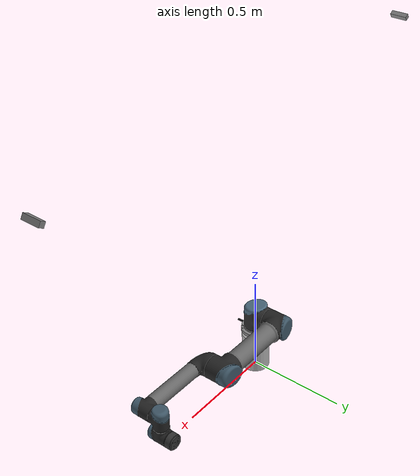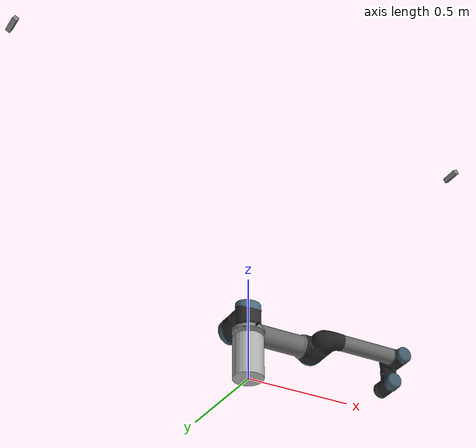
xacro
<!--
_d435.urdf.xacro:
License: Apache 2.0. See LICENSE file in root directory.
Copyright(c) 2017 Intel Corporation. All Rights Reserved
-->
<?xml version="1.0"?>
<robot xmlns:xacro="http://wiki.ros.org/xacro"
       name="ur5" >

  <xacro:arg name="transmission_hw_interface" default="hardware_interface/EffortJointInterface"/>

  <!-- common stuff -->
  <xacro:include filename="$(find ur_description)/urdf/common.gazebo.xacro" />

  <!-- ur5 -->
  <xacro:include filename="$(find ur5_gripper_control)/urdf/ur5.urdf.xacro" />

  <!-- arm -->
  <xacro:ur5_robot prefix="" joint_limited="true"
    shoulder_pan_lower_limit="${-pi}" shoulder_pan_upper_limit="${pi}"
    shoulder_lift_lower_limit="${-pi}" shoulder_lift_upper_limit="${pi}"
    elbow_joint_lower_limit="${-pi}" elbow_joint_upper_limit="${pi}"
    wrist_1_lower_limit="${-pi}" wrist_1_upper_limit="${pi}"
    wrist_2_lower_limit="${-pi}" wrist_2_upper_limit="${pi}"
    wrist_3_lower_limit="${-pi}" wrist_3_upper_limit="${pi}"
    transmission_hw_interface="$(arg transmission_hw_interface)"
  />

  <!-- Realsense Camera -->
  <xacro:include filename="$(find ur5_gripper_control)/urdf/_d435.urdf.xacro" />
  <xacro:include filename="$(find ur5_gripper_control)/urdf/stereo_camera.urdf.xacro" />

  <xacro:sensor_d435 parent="world" name="camera_1_depth" topics_ns="camera_1_depth">
    <origin xyz="1.25 0 1.5" rpy="0 ${pi/6} ${pi}"/>
  </xacro:sensor_d435>

  <xacro:sensor_d435 parent="world" name="camera_2_depth" topics_ns="camera_2_depth">
    <origin xyz="-1.25 0 1.5" rpy="0 ${pi/6} 0.0"/>
  </xacro:sensor_d435>

  <xacro:stereo_camera_v0 name="camera_1_stereo" image_format="R8G8B8"
        parent="world" hfov="90" focal_length="639.997649"
        image_width="1280" image_height="720">
      <origin xyz="1.25 0 1.25" rpy="0 ${pi/6} ${pi}" />
  </xacro:stereo_camera_v0>

  <xacro:stereo_camera_v0 name="camera_2_stereo" image_format="R8G8B8"
      parent="world" hfov="90" focal_length="639.997649"
      image_width="1280" image_height="720">
      <origin xyz="-1.25 0 1.25" rpy="0 ${pi/6} 0.0" />
  </xacro:stereo_camera_v0>

  <link name="world" />

  <link name="pedestal">
    <inertial>
      <origin xyz="0.0 0.0 0.1" rpy="0.0 0.0 0.0"/>
      <mass value="0.0"/>
      <inertia ixx="1.0" ixy="0.0" ixz="0.0" iyy="1.0" iyz="0.0" izz="1.0"/>
    </inertial>
    <visual name="">
      <origin xyz="0.0 0.0 0.1" rpy="0.0 0.0 0.0"/>
      <geometry>
        <cylinder radius="0.07" length="0.2"/>
      </geometry>
      <material name="LightGrey">
        <color rgba="0.7 0.7 0.7 1.0"/>
      </material>
    </visual>
    <collision>
      <origin xyz="0.0 0.0 0.1" rpy="0.0 0.0 0.0"/>
      <geometry>
        <cylinder radius="0.07" length="0.2"/>
      </geometry>
      <material name="LightGrey">
        <color rgba="0.7 0.7 0.7 1.0"/>
      </material>
    </collision>
  </link>

  <gazebo reference="pedestal">
    <selfCollide>true</selfCollide>
    <material>Gazebo/FlatBlack</material>
  </gazebo>

  <joint name="world_joint" type="fixed">
    <parent link="pedestal" />
    <child link = "base_link" />
    <origin xyz="0.0 0.0 0.225" rpy="0.0 0.0 0.0" />
  </joint>

  <joint name="world_pedestal" type="fixed">
    <parent link="world" />
    <child link = "pedestal" />
    <origin xyz="0.0 0.0 0.0" rpy="0.0 0.0 0.0" />
  </joint>

</robot>

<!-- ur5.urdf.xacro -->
<robot xmlns:xacro="http://wiki.ros.org/xacro">

  <xacro:include filename="$(find ur_description)/urdf/ur.transmission.xacro" />
  <xacro:include filename="$(find ur_description)/urdf/ur.gazebo.xacro" />

  <xacro:macro name="cylinder_inertial" params="radius length mass *origin">
    <inertial>
      <mass value="${mass}" />
      <xacro:insert_block name="origin" />
      <inertia ixx="${0.0833333 * mass * (3 * radius * radius + length * length)}" ixy="0.0" ixz="0.0"
        iyy="${0.0833333 * mass * (3 * radius * radius + length * length)}" iyz="0.0"
        izz="${0.5 * mass * radius * radius}" />
    </inertial>
  </xacro:macro>

  <xacro:macro name="ur5_robot" params="prefix joint_limited
    shoulder_pan_lower_limit:=${-2*pi}    shoulder_pan_upper_limit:=${2*pi}
    shoulder_lift_lower_limit:=${-2*pi}    shoulder_lift_upper_limit:=${2*pi}
    elbow_joint_lower_limit:=${-2*pi}    elbow_joint_upper_limit:=${2*pi}
    wrist_1_lower_limit:=${-2*pi}    wrist_1_upper_limit:=${2*pi}
    wrist_2_lower_limit:=${-2*pi}    wrist_2_upper_limit:=${2*pi}
    wrist_3_lower_limit:=${-2*pi}    wrist_3_upper_limit:=${2*pi}
    transmission_hw_interface:=hardware_interface/PositionJointInterface
    safety_limits:=false safety_pos_margin:=0.15
    safety_k_position:=20">

    <!-- Inertia parameters -->
    <xacro:property name="base_mass" value="4.0" />  <!-- This mass might be incorrect -->
    <xacro:property name="shoulder_mass" value="3.7000" />
    <xacro:property name="upper_arm_mass" value="8.3930" />
    <xacro:property name="forearm_mass" value="2.2750" />
    <xacro:property name="wrist_1_mass" value="1.2190" />
    <xacro:property name="wrist_2_mass" value="1.2190" />
    <xacro:property name="wrist_3_mass" value="0.1879" />

    <xacro:property name="shoulder_cog" value="0.0 0.00193 -0.02561" />
    <xacro:property name="upper_arm_cog" value="0.0 -0.024201 0.2125" />
    <xacro:property name="forearm_cog" value="0.0 0.0265 0.11993" />
    <xacro:property name="wrist_1_cog" value="0.0 0.110949 0.01634" />
    <xacro:property name="wrist_2_cog" value="0.0 0.0018 0.11099" />
    <xacro:property name="wrist_3_cog" value="0.0 0.001159 0.0" />

    <!-- Kinematic model -->
    <!-- Properties from urcontrol.conf -->
    <xacro:property name="d1" value="0.089159" />
    <xacro:property name="a2" value="-0.42500" />
    <xacro:property name="a3" value="-0.39225" />
    <xacro:property name="d4" value="0.10915" />
    <xacro:property name="d5" value="0.09465" />
    <xacro:property name="d6" value="0.0823" />

    <!-- Arbitrary offsets for shoulder/elbow joints -->
    <xacro:property name="shoulder_offset" value="0.13585" />  <!-- measured from model -->
    <xacro:property name="elbow_offset" value="-0.1197" /> <!-- measured from model -->

    <!-- link lengths used in model -->
    <xacro:property name="shoulder_height" value="${d1}" />
    <xacro:property name="upper_arm_length" value="${-a2}" />
    <xacro:property name="forearm_length" value="${-a3}" />
    <xacro:property name="wrist_1_length" value="${d4 - elbow_offset - shoulder_offset}" />
    <xacro:property name="wrist_2_length" value="${d5}" />
    <xacro:property name="wrist_3_length" value="${d6}" />
    <!--property name="shoulder_height" value="0.089159" /-->
    <!--property name="shoulder_offset" value="0.13585" /-->  <!-- shoulder_offset - elbow_offset + wrist_1_length = 0.10915 -->
    <!--property name="upper_arm_length" value="0.42500" /-->
    <!--property name="elbow_offset" value="0.1197" /-->       <!-- CAD measured -->
    <!--property name="forearm_length" value="0.39225" /-->
    <!--property name="wrist_1_length" value="0.093" /-->     <!-- CAD measured -->
    <!--property name="wrist_2_length" value="0.09465" /-->   <!-- In CAD this distance is 0.930, but in the spec it is 0.09465 -->
    <!--property name="wrist_3_length" value="0.0823" /-->

    <xacro:property name="shoulder_radius" value="0.060" />   <!-- manually measured -->
    <xacro:property name="upper_arm_radius" value="0.054" />  <!-- manually measured -->
    <xacro:property name="elbow_radius" value="0.060" />      <!-- manually measured -->
    <xacro:property name="forearm_radius" value="0.040" />    <!-- manually measured -->
    <xacro:property name="wrist_radius" value="0.045" />      <!-- manually measured -->

    <link name="${prefix}base_link" >
      <visual>
        <geometry>
          <mesh filename="package://ur_description/meshes/ur5/visual/base.dae" />
        </geometry>
      </visual>
      <collision>
        <geometry>
          <mesh filename="package://ur_description/meshes/ur5/collision/base.stl" />
        </geometry>
      </collision>
      <xacro:cylinder_inertial radius="0.06" length="0.05" mass="${base_mass}">
        <origin xyz="0.0 0.0 0.0" rpy="0 0 0" />
      </xacro:cylinder_inertial>
    </link>

    <joint name="${prefix}shoulder_pan_joint" type="revolute">
      <parent link="${prefix}base_link" />
      <child link = "${prefix}shoulder_link" />
      <origin xyz="0.0 0.0 ${shoulder_height}" rpy="0.0 0.0 0.0" />
      <axis xyz="0 0 1" />
      <xacro:unless value="${joint_limited}">
        <limit lower="${-2.0 * pi}" upper="${2.0 * pi}" effort="150.0" velocity="3.15"/>
        <xacro:if value="${safety_limits}">
          <safety_controller soft_lower_limit="${-2.0 * pi + safety_pos_margin}" soft_upper_limit="${2.0 * pi - safety_pos_margin}" k_position="${safety_k_position}" k_velocity="0.0"/>
        </xacro:if>
      </xacro:unless>
      <xacro:if value="${joint_limited}">
        <limit lower="${shoulder_pan_lower_limit}" upper="${shoulder_pan_upper_limit}" effort="150.0" velocity="3.15"/>
        <xacro:if value="${safety_limits}">
          <safety_controller soft_lower_limit="${shoulder_pan_lower_limit + safety_pos_margin}" soft_upper_limit="${shoulder_pan_upper_limit - safety_pos_margin}" k_position="${safety_k_position}" k_velocity="0.0"/>
        </xacro:if>
      </xacro:if>
      <dynamics damping="0.0" friction="0.0"/>
    </joint>

    <link name="${prefix}shoulder_link">
      <visual>
        <geometry>
          <mesh filename="package://ur_description/meshes/ur5/visual/shoulder.dae" />
        </geometry>
      </visual>
      <collision>
        <geometry>
          <mesh filename="package://ur_description/meshes/ur5/collision/shoulder.stl" />
        </geometry>
      </collision>
      <xacro:cylinder_inertial radius="0.06" length="0.15" mass="${shoulder_mass}">
        <origin xyz="0.0 0.0 0.0" rpy="0 0 0" />
      </xacro:cylinder_inertial>
    </link>

    <joint name="${prefix}shoulder_lift_joint" type="revolute">
      <parent link="${prefix}shoulder_link" />
      <child link = "${prefix}upper_arm_link" />
      <origin xyz="0.0 ${shoulder_offset} 0.0" rpy="0.0 ${pi / 2.0} 0.0" />
      <axis xyz="0 1 0" />
      <xacro:unless value="${joint_limited}">
        <limit lower="${-2.0 * pi}" upper="${2.0 * pi}" effort="150.0" velocity="3.15"/>
        <xacro:if value="${safety_limits}">
          <safety_controller soft_lower_limit="${-2.0 * pi + safety_pos_margin}" soft_upper_limit="${2.0 * pi - safety_pos_margin}" k_position="${safety_k_position}" k_velocity="0.0"/>
        </xacro:if>
      </xacro:unless>
      <xacro:if value="${joint_limited}">
        <limit lower="${shoulder_lift_lower_limit}" upper="${shoulder_lift_upper_limit}" effort="150.0" velocity="3.15"/>
        <xacro:if value="${safety_limits}">
          <safety_controller soft_lower_limit="${shoulder_lift_lower_limit + safety_pos_margin}" soft_upper_limit="${shoulder_lift_upper_limit - safety_pos_margin}" k_position="${safety_k_position}" k_velocity="0.0"/>
        </xacro:if>
      </xacro:if>
      <dynamics damping="0.0" friction="0.0"/>
    </joint>

    <link name="${prefix}upper_arm_link">
      <visual>
        <geometry>
          <mesh filename="package://ur_description/meshes/ur5/visual/upperarm.dae" />
        </geometry>
      </visual>
      <collision>
        <geometry>
          <mesh filename="package://ur_description/meshes/ur5/collision/upperarm.stl" />
        </geometry>
      </collision>
      <xacro:cylinder_inertial radius="0.06" length="0.56" mass="${upper_arm_mass}">
        <origin xyz="0.0 0.0 0.28" rpy="0 0 0" />
      </xacro:cylinder_inertial>
    </link>

    <joint name="${prefix}elbow_joint" type="revolute">
      <parent link="${prefix}upper_arm_link" />
      <child link = "${prefix}forearm_link" />
      <origin xyz="0.0 ${elbow_offset} ${upper_arm_length}" rpy="0.0 0.0 0.0" />
      <axis xyz="0 1 0" />
      <xacro:unless value="${joint_limited}">
        <limit lower="${-pi}" upper="${pi}" effort="150.0" velocity="3.15"/>
        <xacro:if value="${safety_limits}">
          <safety_controller soft_lower_limit="${-2.0 * pi + safety_pos_margin}" soft_upper_limit="${2.0 * pi - safety_pos_margin}" k_position="${safety_k_position}" k_velocity="0.0"/>
        </xacro:if>
      </xacro:unless>
      <xacro:if value="${joint_limited}">
        <limit lower="${elbow_joint_lower_limit}" upper="${elbow_joint_upper_limit}" effort="150.0" velocity="3.15"/>
        <xacro:if value="${safety_limits}">
          <safety_controller soft_lower_limit="${elbow_joint_lower_limit + safety_pos_margin}" soft_upper_limit="${elbow_joint_upper_limit - safety_pos_margin}" k_position="${safety_k_position}" k_velocity="0.0"/>
        </xacro:if>
      </xacro:if>
      <dynamics damping="0.0" friction="0.0"/>
    </joint>

    <link name="${prefix}forearm_link">
      <visual>
        <geometry>
          <mesh filename="package://ur_description/meshes/ur5/visual/forearm.dae" />
        </geometry>
      </visual>
      <collision>
        <geometry>
          <mesh filename="package://ur_description/meshes/ur5/collision/forearm.stl" />
        </geometry>
      </collision>
      <xacro:cylinder_inertial radius="0.06" length="${-a3}" mass="${forearm_mass}">
        <origin xyz="0.0 0.0 ${-a3/2}" rpy="0 0 0" />
      </xacro:cylinder_inertial>
    </link>

    <joint name="${prefix}wrist_1_joint" type="revolute">
      <parent link="${prefix}forearm_link" />
      <child link = "${prefix}wrist_1_link" />
      <origin xyz="0.0 0.0 ${forearm_length}" rpy="0.0 ${pi / 2.0} 0.0" />
      <axis xyz="0 1 0" />
      <xacro:unless value="${joint_limited}">
        <limit lower="${-2.0 * pi}" upper="${2.0 * pi}" effort="28.0" velocity="3.2"/>
        <xacro:if value="${safety_limits}">
          <safety_controller soft_lower_limit="${-2.0 * pi + safety_pos_margin}" soft_upper_limit="${2.0 * pi - safety_pos_margin}" k_position="${safety_k_position}" k_velocity="0.0"/>
        </xacro:if>
      </xacro:unless>
      <xacro:if value="${joint_limited}">
        <limit lower="${wrist_1_lower_limit}" upper="${wrist_1_upper_limit}" effort="28.0" velocity="3.2"/>
        <xacro:if value="${safety_limits}">
          <safety_controller soft_lower_limit="${wrist_1_lower_limit + safety_pos_margin}" soft_upper_limit="${wrist_1_upper_limit - safety_pos_margin}" k_position="${safety_k_position}" k_velocity="0.0"/>
        </xacro:if>
      </xacro:if>
      <dynamics damping="0.0" friction="0.0"/>
    </joint>

    <link name="${prefix}wrist_1_link">
      <visual>
        <geometry>
          <mesh filename="package://ur_description/meshes/ur5/visual/wrist1.dae" />
        </geometry>
      </visual>
      <collision>
        <geometry>
          <mesh filename="package://ur_description/meshes/ur5/collision/wrist1.stl" />
        </geometry>
      </collision>
      <xacro:cylinder_inertial radius="0.06" length="0.12" mass="${wrist_1_mass}">
        <origin xyz="0.0 ${wrist_1_length} 0.0" rpy="0 0 0" />
      </xacro:cylinder_inertial>
    </link>

    <joint name="${prefix}wrist_2_joint" type="revolute">
      <parent link="${prefix}wrist_1_link" />
      <child link = "${prefix}wrist_2_link" />
      <origin xyz="0.0 ${wrist_1_length} 0.0" rpy="0.0 0.0 0.0" />
      <axis xyz="0 0 1" />
      <xacro:unless value="${joint_limited}">
        <limit lower="${-2.0 * pi}" upper="${2.0 * pi}" effort="28.0" velocity="3.2"/>
        <xacro:if value="${safety_limits}">
          <safety_controller soft_lower_limit="${-2.0 * pi + safety_pos_margin}" soft_upper_limit="${2.0 * pi - safety_pos_margin}" k_position="${safety_k_position}" k_velocity="0.0"/>
        </xacro:if>
      </xacro:unless>
      <xacro:if value="${joint_limited}">
        <limit lower="${wrist_2_lower_limit}" upper="${wrist_2_upper_limit}" effort="28.0" velocity="3.2"/>
        <xacro:if value="${safety_limits}">
          <safety_controller soft_lower_limit="${wrist_2_lower_limit + safety_pos_margin}" soft_upper_limit="${wrist_2_upper_limit - safety_pos_margin}" k_position="${safety_k_position}" k_velocity="0.0"/>
        </xacro:if>
      </xacro:if>
      <dynamics damping="0.0" friction="0.0"/>
    </joint>

    <link name="${prefix}wrist_2_link">
      <visual>
        <geometry>
          <mesh filename="package://ur_description/meshes/ur5/visual/wrist2.dae" />
        </geometry>
      </visual>
      <collision>
        <geometry>
          <mesh filename="package://ur_description/meshes/ur5/collision/wrist2.stl" />
        </geometry>
      </collision>
      <xacro:cylinder_inertial radius="0.06" length="0.12" mass="${wrist_2_mass}">
        <origin xyz="0.0 0.0 ${wrist_2_length}" rpy="0 0 0" />
      </xacro:cylinder_inertial>
    </link>

    <joint name="${prefix}wrist_3_joint" type="revolute">
      <parent link="${prefix}wrist_2_link" />
      <child link = "${prefix}wrist_3_link" />
      <origin xyz="0.0 0.0 ${wrist_2_length}" rpy="0.0 0.0 0.0" />
      <axis xyz="0 1 0" />
      <xacro:unless value="${joint_limited}">
        <limit lower="${-2.0 * pi}" upper="${2.0 * pi}" effort="28.0" velocity="3.2"/>
        <xacro:if value="${safety_limits}">
          <safety_controller soft_lower_limit="${-2.0 * pi + safety_pos_margin}" soft_upper_limit="${2.0 * pi - safety_pos_margin}" k_position="${safety_k_position}" k_velocity="0.0"/>
        </xacro:if>
      </xacro:unless>
      <xacro:if value="${joint_limited}">
        <limit lower="${wrist_3_lower_limit}" upper="${wrist_3_upper_limit}" effort="28.0" velocity="3.2"/>
        <xacro:if value="${safety_limits}">
          <safety_controller soft_lower_limit="${wrist_3_lower_limit + safety_pos_margin}" soft_upper_limit="${wrist_3_upper_limit - safety_pos_margin}" k_position="${safety_k_position}" k_velocity="0.0"/>
        </xacro:if>
      </xacro:if>
      <dynamics damping="0.0" friction="0.0"/>
    </joint>

    <link name="${prefix}wrist_3_link">
      <visual>
        <geometry>
          <mesh filename="package://ur_description/meshes/ur5/visual/wrist3.dae" />
        </geometry>
      </visual>
      <collision>
        <geometry>
          <mesh filename="package://ur_description/meshes/ur5/collision/wrist3.stl" />
        </geometry>
      </collision>
      <xacro:cylinder_inertial radius="0.0375" length="0.0345" mass="${wrist_3_mass}">
        <origin xyz="0.0 ${wrist_3_length - 0.0345/2} 0.0" rpy="${pi/2} 0 0" />
      </xacro:cylinder_inertial>
    </link>

    <joint name="${prefix}ee_fixed_joint" type="fixed">
      <parent link="${prefix}wrist_3_link" />
      <child link = "${prefix}ee_link" />
      <origin xyz="0.0 ${wrist_3_length} 0.0" rpy="0.0 0.0 ${pi/2.0}" />
    </joint>

    <link name="${prefix}ee_link">
      <collision>
        <geometry>
          <box size="0.01 0.01 0.01"/>
        </geometry>
        <origin rpy="0 0 0" xyz="-0.01 0 0"/>
      </collision>
    </link>

    <xacro:ur_arm_transmission prefix="${prefix}" hw_interface="${transmission_hw_interface}" />
    <xacro:ur_arm_gazebo prefix="${prefix}" />

    <!-- ROS base_link to UR 'Base' Coordinates transform -->
    <link name="${prefix}base"/>
    <joint name="${prefix}base_link-base_fixed_joint" type="fixed">
      <!-- NOTE: this rotation is only needed as long as base_link itself is
                 not corrected wrt the real robot (ie: rotated over 180
                 degrees)
      -->
      <origin xyz="0 0 0" rpy="0 0 ${-pi}"/>
      <parent link="${prefix}base_link"/>
      <child link="${prefix}base"/>
    </joint>

    <!-- Frame coincident with all-zeros TCP on UR controller -->
    <link name="${prefix}tool0"/>
    <joint name="${prefix}wrist_3_link-tool0_fixed_joint" type="fixed">
      <origin xyz="0 ${wrist_3_length} 0" rpy="${pi/-2.0} 0 0"/>
      <parent link="${prefix}wrist_3_link"/>
      <child link="${prefix}tool0"/>
    </joint>

  </xacro:macro>
</robot>

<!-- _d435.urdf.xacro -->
<robot name="sensor_d435" xmlns:xacro="http://ros.org/wiki/xacro">
  <!--File includes-->
  <xacro:include filename="$(find ur5_gripper_control)/urdf/_d435.gazebo.xacro"/>

  <xacro:macro name="sensor_d435" params="name:=camera topics_ns:=camera parent *origin publish_pointcloud:=true">
    <xacro:property name="M_PI" value="3.1415926535897931" />

    <!-- The following values are approximate, and the camera node
     publishing TF values with actual calibrated camera extrinsic values -->
    <xacro:property name="d435_cam_depth_to_left_ir_offset" value="0.0"/>
    <xacro:property name="d435_cam_depth_to_right_ir_offset" value="-0.050"/>
    <xacro:property name="d435_cam_depth_to_color_offset" value="0.015"/>

    <!-- The following values model the aluminum peripherial case for the
    D435 camera, with the camera joint represented by the actual
    peripherial camera tripod mount -->
    <xacro:property name="d435_cam_width" value="0.090"/>
    <xacro:property name="d435_cam_height" value="0.025"/>
    <xacro:property name="d435_cam_depth" value="0.02505"/>
    <xacro:property name="d435_cam_mount_from_center_offset" value="0.0149"/>

    <!-- The following offset is relative the the physical D435 camera peripherial
    camera tripod mount -->
    <xacro:property name="d435_cam_depth_px" value="${d435_cam_mount_from_center_offset}"/>
    <xacro:property name="d435_cam_depth_py" value="0.0175"/>
    <xacro:property name="d435_cam_depth_pz" value="${d435_cam_height/2}"/>

    <material name="${name}_aluminum">
    <color rgba="0.5 0.5 0.5 1"/>
    </material>

    <!-- camera body, with origin at bottom screw mount -->
    <joint name="${name}_joint" type="fixed">
      <xacro:insert_block name="origin" />
      <parent link="${parent}"/>
      <child link="${name}_bottom_screw_frame" />
    </joint>
    <link name="${name}_bottom_screw_frame"/>

    <joint name="${name}_link_joint" type="fixed">
      <origin xyz="0 ${d435_cam_depth_py} ${d435_cam_depth_pz}" rpy="0 0 0"/>
      <parent link="${name}_bottom_screw_frame"/>
      <child link="${name}_link" />
    </joint>

    <link name="${name}_link">
      <visual>
      <origin xyz="${d435_cam_mount_from_center_offset} ${-d435_cam_depth_py} 0" rpy="${M_PI/2} 0 ${M_PI/2}"/>
        <geometry>
          <box size="${d435_cam_width} ${d435_cam_height} ${d435_cam_depth}"/>
        </geometry>
        <material name="${name}_aluminum"/>
      </visual>
      <collision>
        <origin xyz="0 ${-d435_cam_depth_py} 0" rpy="0 0 0"/>
        <geometry>
        <box size="${d435_cam_depth} ${d435_cam_width} ${d435_cam_height}"/>
        </geometry>
      </collision>
      <inertial>
        <!-- The following are not reliable values, and should not be used for modeling -->
        <mass value="0.564" />
        <origin xyz="0 0 0" />
        <inertia ixx="0.003881243" ixy="0.0" ixz="0.0" iyy="0.000498940" iyz="0.0" izz="0.003879257" />
      </inertial>
    </link>

    <!-- camera depth joints and links -->
    <joint name="${name}_depth_joint" type="fixed">
      <origin xyz="0 0 0" rpy="0 0 0"/>
      <parent link="${name}_link"/>
      <child link="${name}_depth_frame" />
    </joint>
    <link name="${name}_depth_frame"/>

    <joint name="${name}_depth_optical_joint" type="fixed">
      <origin xyz="0 0 0" rpy="${-M_PI/2} 0 ${-M_PI/2}" />
      <parent link="${name}_depth_frame" />
      <child link="${name}_depth_optical_frame" />
    </joint>
    <link name="${name}_depth_optical_frame"/>

    <!-- camera left IR joints and links -->
    <joint name="${name}_left_ir_joint" type="fixed">
      <origin xyz="0 ${d435_cam_depth_to_left_ir_offset} 0" rpy="0 0 0" />
      <parent link="${name}_depth_frame" />
      <child link="${name}_left_ir_frame" />
    </joint>
    <link name="${name}_left_ir_frame"/>

    <joint name="${name}_left_ir_optical_joint" type="fixed">
      <origin xyz="0 0 0" rpy="${-M_PI/2} 0 ${-M_PI/2}" />
      <parent link="${name}_left_ir_frame" />
      <child link="${name}_left_ir_optical_frame" />
    </joint>
    <link name="${name}_left_ir_optical_frame"/>

    <!-- camera right IR joints and links -->
    <joint name="${name}_right_ir_joint" type="fixed">
      <origin xyz="0 ${d435_cam_depth_to_right_ir_offset} 0" rpy="0 0 0" />
      <parent link="${name}_depth_frame" />
      <child link="${name}_right_ir_frame" />
    </joint>
    <link name="${name}_right_ir_frame"/>

    <joint name="${name}_right_ir_optical_joint" type="fixed">
      <origin xyz="0 0 0" rpy="${-M_PI/2} 0 ${-M_PI/2}" />
      <parent link="${name}_right_ir_frame" />
      <child link="${name}_right_ir_optical_frame" />
    </joint>
    <link name="${name}_right_ir_optical_frame"/>

    <!-- camera color joints and links -->
    <joint name="${name}_color_joint" type="fixed">
      <origin xyz="0 ${d435_cam_depth_to_color_offset} 0" rpy="0 0 0" />
      <parent link="${name}_depth_frame" />
      <child link="${name}_color_frame" />
    </joint>
    <link name="${name}_color_frame"/>

    <joint name="${name}_color_optical_joint" type="fixed">
      <origin xyz="0 0 0" rpy="${-M_PI/2} 0 ${-M_PI/2}" />
      <parent link="${name}_color_frame" />
      <child link="${name}_color_optical_frame" />
    </joint>
    <link name="${name}_color_optical_frame"/>

    <!-- Realsense Gazebo Plugin -->
    <xacro:gazebo_d435 camera_name="${name}" reference_link="${name}_link" topics_ns="${topics_ns}" depth_optical_frame="${name}_depth_optical_frame" color_optical_frame="${name}_color_optical_frame" infrared1_optical_frame="${name}_left_ir_optical_frame" infrared2_optical_frame="${name}_right_ir_optical_frame" publish_pointcloud="${publish_pointcloud}"/>

  </xacro:macro>
</robot>

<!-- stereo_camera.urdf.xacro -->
<robot xmlns:xacro="http://www.ros.org/wiki/xacro">

  <!-- stereo camera macro uses wge100_camera macros -->
  <xacro:include filename="$(find ur5_gripper_control)/urdf/wge100_camera.urdf.xacro" />

  <xacro:include filename="$(find ur5_gripper_control)/urdf/stereo_camera.gazebo.xacro" />

  <xacro:property name="stereo_dx" value="0.00" />
  <xacro:property name="stereo_dy" value="-0.09" /> <!-- +y to the left -->
  <xacro:property name="stereo_dz" value="0.00" />
  <xacro:property name="stereo_rx" value="0.00" />
  <xacro:property name="stereo_ry" value="0.00" />
  <xacro:property name="stereo_rz" value="0.00" />

  <!-- this macro is used for creating wide and narrow double stereo camera links -->
  <xacro:macro name="stereo_camera_v0" params="name parent focal_length hfov image_format image_width image_height *origin">

    <joint name="${name}_frame_joint" type="fixed">
      <xacro:insert_block name="origin" />
      <parent link="${parent}"/>
      <child link="${name}_link"/>
    </joint>
    <!-- camera link is at center of the optical frame, but in x-forward notation -->
    <link name="${name}_link">

      <inertial>
        <mass value="0.1" />
        <origin xyz="0 0 0" rpy="0 0 0" />
        <inertia ixx="0.01"  ixy="0"  ixz="0" iyy="0.01"  iyz="0"  izz="0.01" /> <!-- this inertia is made up for now. -->
      </inertial>

    </link>

    <!-- attach optical frame to the camera link -->
    <joint name="${name}_optical_frame_joint" type="fixed">
      <origin xyz="0 0 0" rpy="${-pi/2} 0.0 ${-pi/2}" /> <!-- rotate frame from x-forward to z-forward camera coords -->
      <parent link="${name}_link"/>
      <child link="${name}_optical_frame"/>
    </joint>
    <!-- optical frame for the stereo camera, with z-forward notation, this is the frame stereo camera images users should refer to -->
    <link name="${name}_optical_frame" type="camera"/>

    <!-- stereo left camera -->
    <xacro:wge100_camera_v0 name="${name}_l_stereo_camera" camera_name="${name}/left" image_format="${image_format}" image_topic_name="image_raw"
                            camera_info_topic_name="camera_info" parent="${name}_link"
                            hfov="${hfov}" focal_length="${focal_length}"
                            frame_id="${name}_optical_frame" hack_baseline="0"
                            image_width="${image_width}" image_height="${image_height}">
      <origin xyz="0 0 0" rpy="0 0 0" />
    </xacro:wge100_camera_v0>

    <!-- stereo right camera -->
    <xacro:wge100_camera_v0 name="${name}_r_stereo_camera" camera_name="${name}/right" image_format="${image_format}" image_topic_name="image_raw"
                            camera_info_topic_name="camera_info" parent="${name}_l_stereo_camera_frame"
                            hfov="${hfov}" focal_length="${focal_length}"
                            frame_id="${name}_optical_frame" hack_baseline="${-stereo_dy}"
                            image_width="${image_width}" image_height="${image_height}">
      <origin xyz="${stereo_dx} ${stereo_dy} ${stereo_dz}" rpy="${stereo_rx} ${stereo_ry} ${stereo_rz}" />
    </xacro:wge100_camera_v0>

    <!-- extensions -->
    <xacro:stereo_camera_gazebo_v0 name="${name}" focal_length="${focal_length}" hfov="${hfov}"
                                   image_width="${image_width}" image_height="${image_height}"/>

  </xacro:macro>
</robot>

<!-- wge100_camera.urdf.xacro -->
<!-- XML namespaces -->
<robot xmlns:xacro="http://www.ros.org/wiki/xacro">

  <xacro:include filename="$(find ur5_gripper_control)/urdf/wge100_camera.gazebo.xacro" />

  <xacro:macro name="wge100_camera_v0" params="name camera_name image_format image_topic_name camera_info_topic_name parent hfov focal_length frame_id hack_baseline image_width image_height *origin">

    <joint name="${name}_frame_joint" type="fixed">
      <xacro:insert_block name="origin" />
      <parent link="${parent}"/>
      <child link="${name}_frame"/>
    </joint>
    <link name="${name}_frame">

      <inertial>
        <mass value="0.01" />
        <origin xyz="0 0 0" />
        <inertia ixx="0.001"  ixy="0.0"  ixz="0.0"
                 iyy="0.001"  iyz="0.0"
                 izz="0.001" />
      </inertial>

    </link>

    <joint name="${name}_optical_frame_joint" type="fixed">
      <origin xyz="0 0 0" rpy="${-pi/2} 0.0 ${-pi/2}" />
      <parent link="${name}_frame" />
      <child link="${name}_optical_frame"/>
    </joint>
    <link name="${name}_optical_frame"/>

    <!-- extensions -->
    <xacro:wge100_camera_gazebo_v0 name="${name}" camera_name="${camera_name}" image_format="${image_format}" image_topic_name="${image_topic_name}"
                                   camera_info_topic_name="${camera_info_topic_name}"
                                   hfov="${hfov}" focal_length="${focal_length}"
                                   frame_id="${frame_id}" hack_baseline="${hack_baseline}"
                                   image_width="${image_width}" image_height="${image_height}"/>

  </xacro:macro>

</robot>
